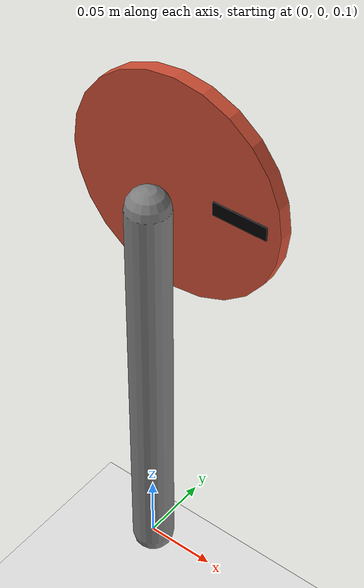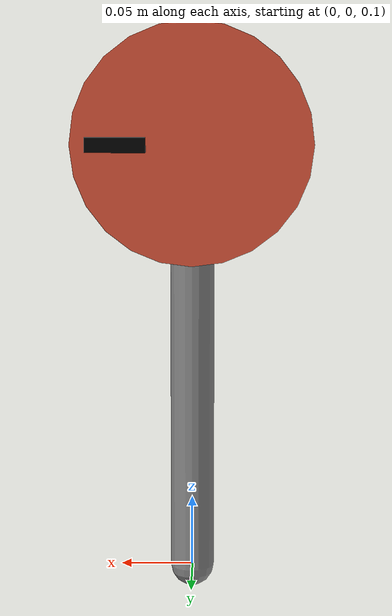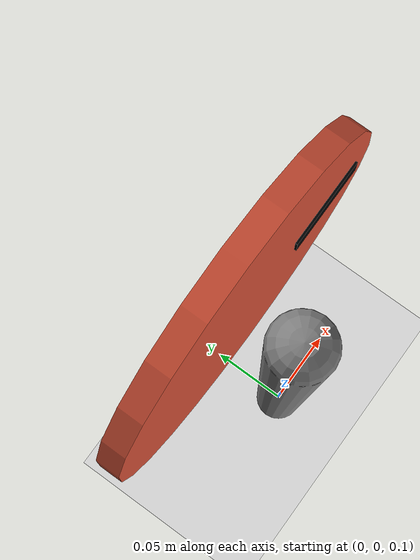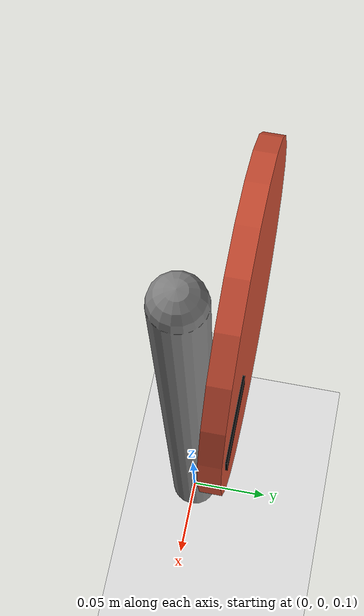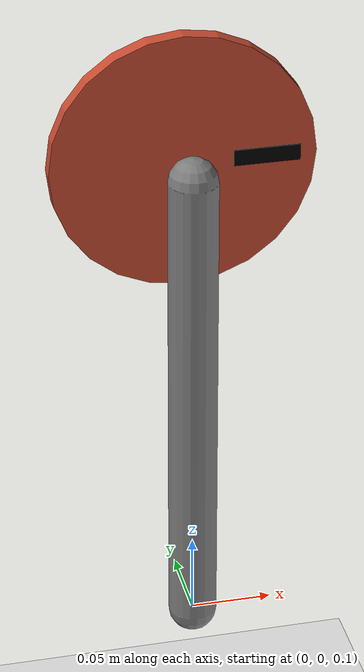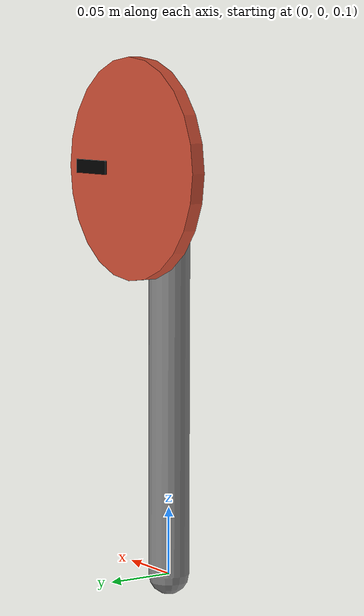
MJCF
<mujoco model="rw_pendulum">
  <option timestep="0.001"/>
  <worldbody>
    <light pos="0 0 3"/>
    <geom type="plane" size="1 1 0.1" rgba=".9 .9 .9 1"/>
    <body name="pole" pos="0 0 0.1">
      <joint name="pivot" type="hinge" axis="0 1 0" damping="0.001"/>
      <geom type="capsule" fromto="0 0 0 0 0 0.3" size="0.015" mass="0.15"/>
      <body name="wheel" pos="0 0.03 0.3">
        <joint name="wheel" type="hinge" axis="0 1 0" damping="0.0001"/>
        <geom type="cylinder" fromto="0 -0.005 0 0 0.005 0" size="0.08" mass="0.2" rgba=".8 .3 .2 1"/>
        <geom type="box" pos="0.05 0 0" size="0.02 0.006 0.005" mass="0.001" rgba="0 0 0 1"/>
      </body>
    </body>
  </worldbody>
  <actuator>
    <motor name="wheel_motor" joint="wheel" gear="1" ctrlrange="-0.5 0.5"/>
  </actuator>
</mujoco>
